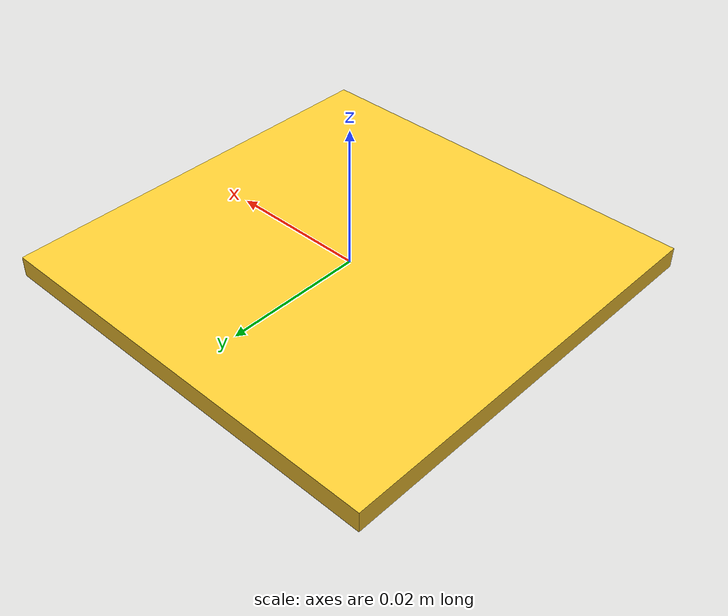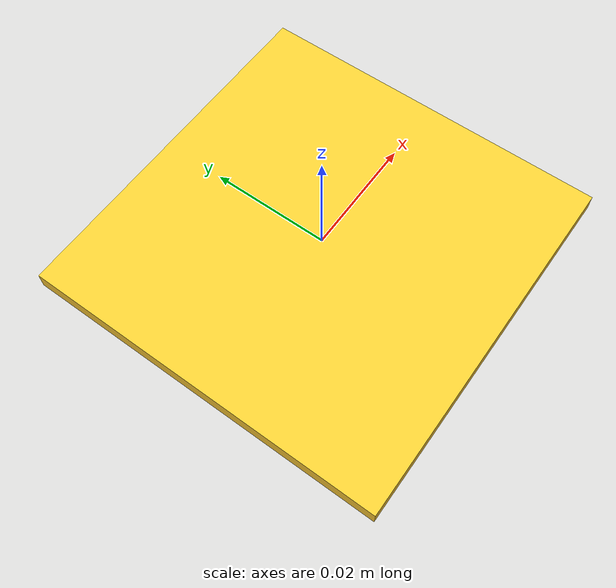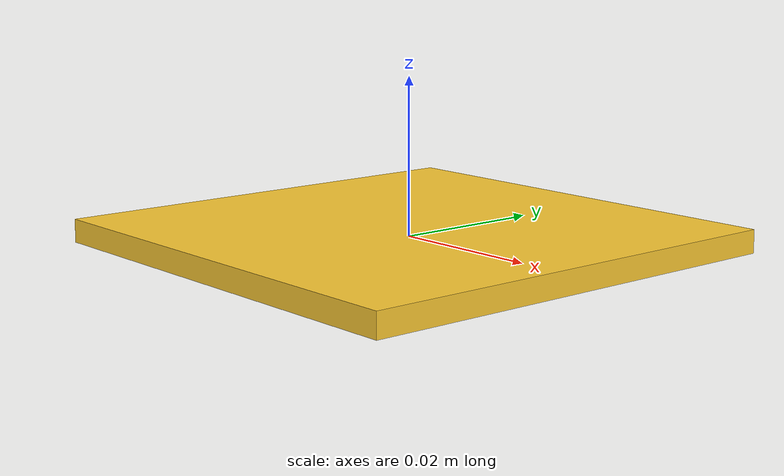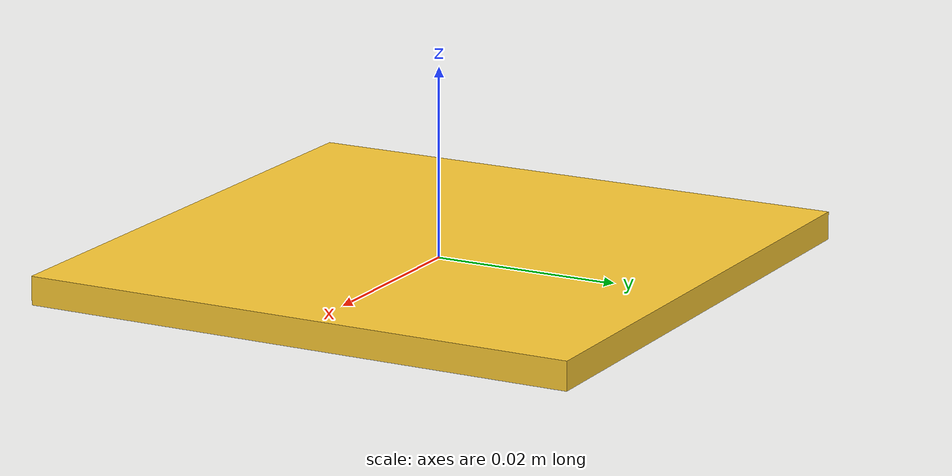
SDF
<?xml version='1.0' encoding='utf-8'?>
<sdf version="1.6">
  <model name="cheese">
    <static>false</static>

    <link name="link">
      <pose>0 0 0 0 0 0</pose>

<inertial>
  <mass>0.54000000</mass>
  <inertia>
    <ixx>0.00016240</ixx>
    <iyy>0.00016240</iyy>
    <izz>0.00032400</izz>
    <ixy>0.00000000</ixy>
    <ixz>0.00000000</ixz>
    <iyz>0.00000000</iyz>
  </inertia>
</inertial>

	<collision name="collision">
	  <geometry>
	  <box>
	    <size>0.06 0.06 0.003</size>
	  </box>
	  </geometry>
	  <surface>
	    <contact>
	      <collide_without_contact>false</collide_without_contact>
	      <ode>
		<max_vel>0</max_vel>
		<min_depth>0.001</min_depth>
	      </ode>
	    </contact>
	    <bounce>
	      <restitution_coefficient>0.0</restitution_coefficient>
	      <threshold>1.0</threshold>
	    </bounce>
	    <friction>
	      <ode>
		<mu>1.5</mu>
		<mu2>1.5</mu2>
	      </ode>
	    </friction>
	  </surface>
	</collision>

      <visual name="visual">
	<geometry>
	  <box>
	    <size>0.06 0.06 0.003</size>
	  </box>
	</geometry>
	  <material>
	    <ambient>1 0.9 0.3 1</ambient>
	    <diffuse>1 0.8 0.2 1</diffuse>
	    <specular>0.3 0.3 0.1 1</specular>
	    <emissive>0 0 0 1</emissive>
	  </material>
      </visual>
    </link>
  </model>
</sdf>
